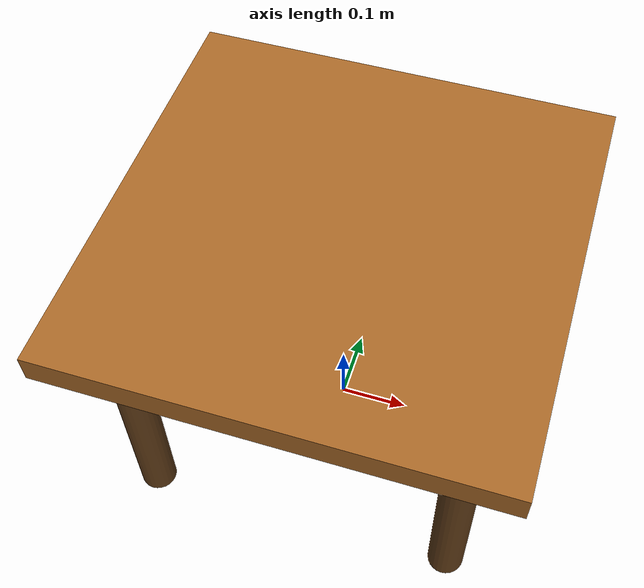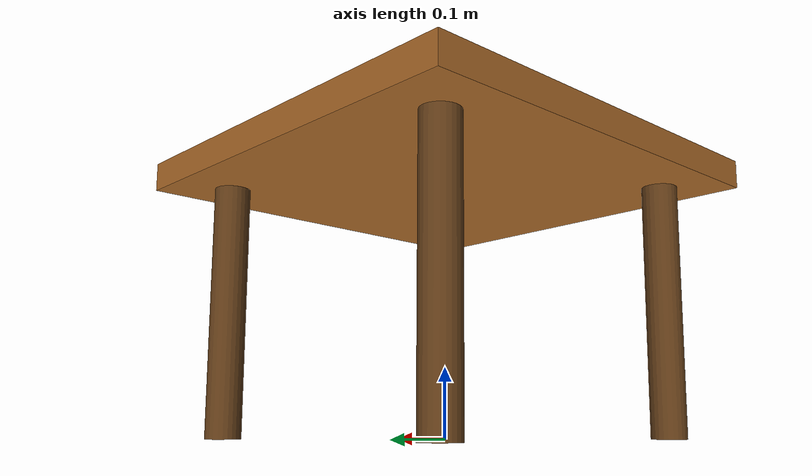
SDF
<?xml version="1.0" ?>
<sdf version="1.6">
  <model name="table_model">
    <static>true</static>
    <link name="link">
      <!-- Table top -->
      <visual name="tabletop">
        <pose>0 0 0.38 0 0 0</pose>
        <geometry>
          <box>
            <size>0.6 0.6 0.04</size>
          </box>
        </geometry>
        <material>
          <ambient>0.55 0.35 0.15 1</ambient>
          <diffuse>0.65 0.4 0.15 1</diffuse>
          <specular>0.1 0.05 0.02 1</specular>
        </material>
      </visual>
      <collision name="tabletop_collision">
        <pose>0 0 0.38 0 0 0</pose>
        <geometry>
          <box>
            <size>0.6 0.6 0.04</size>
          </box>
        </geometry>
      </collision>
      <!-- Table leg 1 -->
      <visual name="leg1">
        <pose>0.22 0.22 0.18 0 0 0</pose>
        <geometry>
          <cylinder>
            <radius>0.025</radius>
            <length>0.36</length>
          </cylinder>
        </geometry>
        <material>
          <ambient>0.4 0.25 0.1 1</ambient>
          <diffuse>0.4 0.25 0.1 1</diffuse>
        </material>
      </visual>
      <!-- Table leg 2 -->
      <visual name="leg2">
        <pose>-0.22 0.22 0.18 0 0 0</pose>
        <geometry>
          <cylinder>
            <radius>0.025</radius>
            <length>0.36</length>
          </cylinder>
        </geometry>
        <material>
          <ambient>0.4 0.25 0.1 1</ambient>
          <diffuse>0.4 0.25 0.1 1</diffuse>
        </material>
      </visual>
      <!-- Table leg 3 -->
      <visual name="leg3">
        <pose>0.22 -0.22 0.18 0 0 0</pose>
        <geometry>
          <cylinder>
            <radius>0.025</radius>
            <length>0.36</length>
          </cylinder>
        </geometry>
        <material>
          <ambient>0.4 0.25 0.1 1</ambient>
          <diffuse>0.4 0.25 0.1 1</diffuse>
        </material>
      </visual>
      <!-- Table leg 4 -->
      <visual name="leg4">
        <pose>-0.22 -0.22 0.18 0 0 0</pose>
        <geometry>
          <cylinder>
            <radius>0.025</radius>
            <length>0.36</length>
          </cylinder>
        </geometry>
        <material>
          <ambient>0.4 0.25 0.1 1</ambient>
          <diffuse>0.4 0.25 0.1 1</diffuse>
        </material>
      </visual>
    </link>
  </model>
</sdf>
